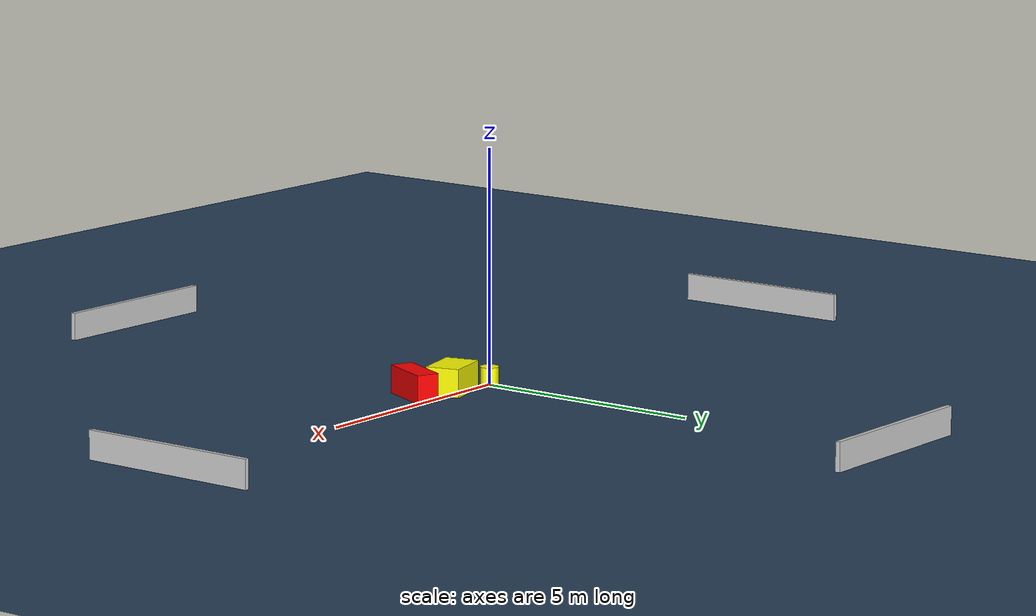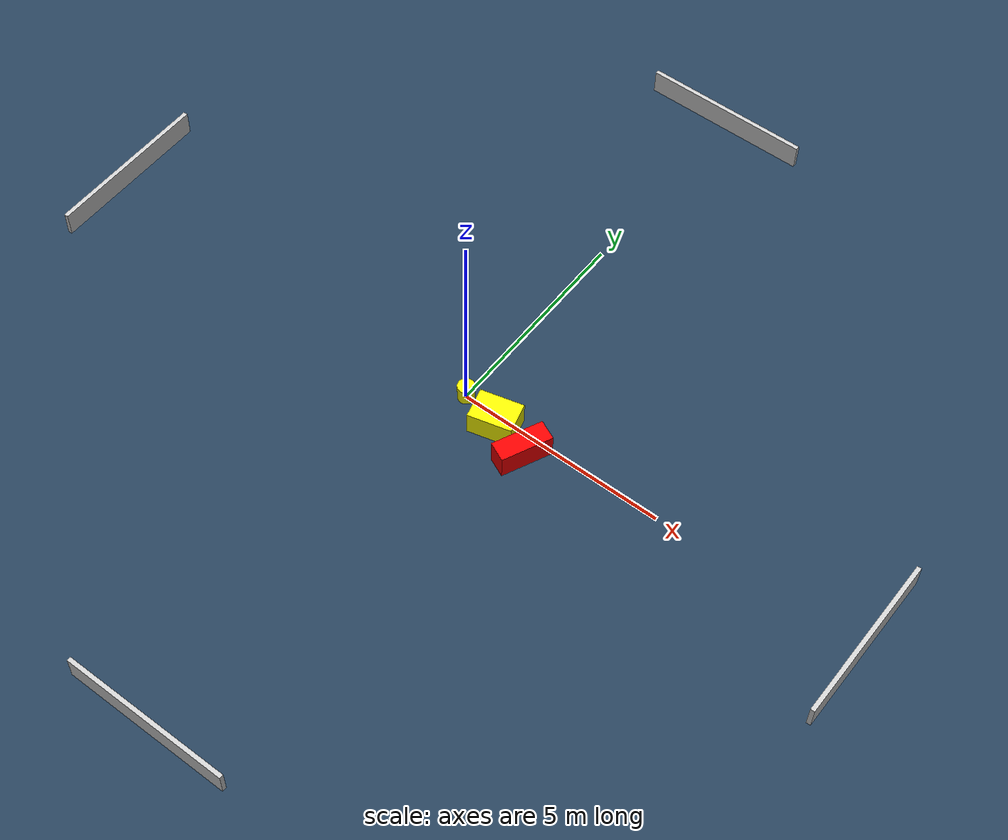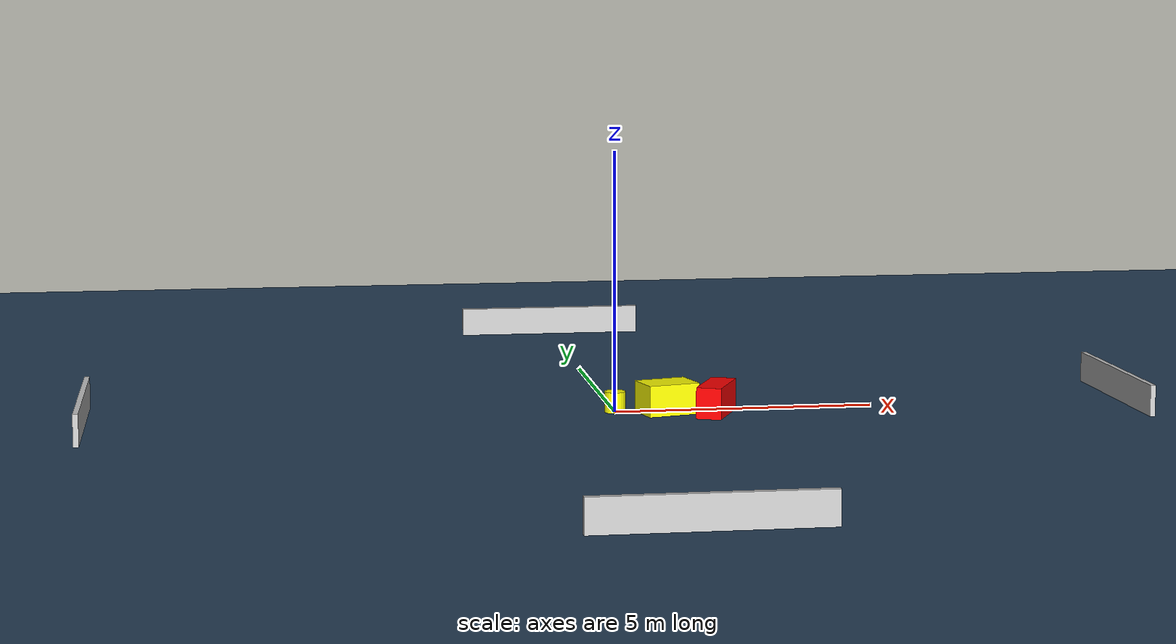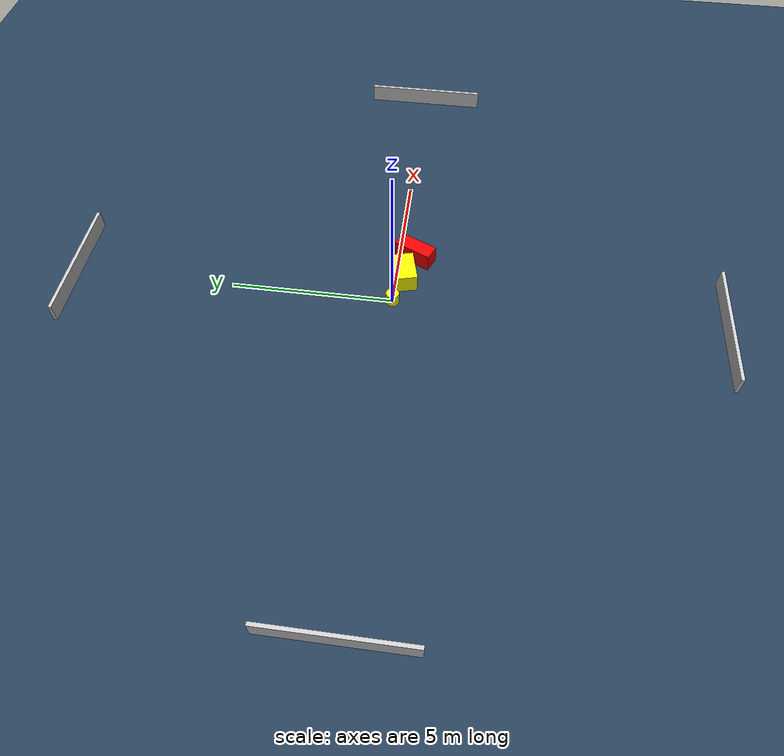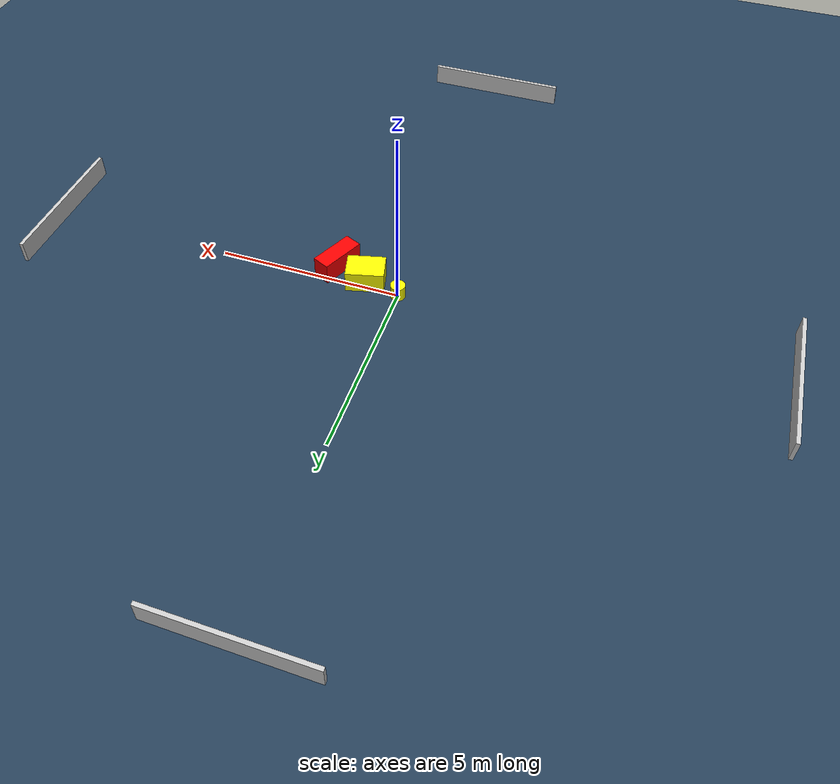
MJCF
<?xml version="1.0" ?>
<mujoco model="generated_environment">
  <option timestep="0.01" integrator="RK4" cone="elliptic"/>
  <default>
    <geom density="1"/>
  </default>
  <asset>
    <texture builtin="gradient" height="3072" name="skybox" rgb1="0.3 0.5 0.7" rgb2="0 0 0" type="skybox" width="512"/>
    <texture builtin="checker" height="300" name="groundplane" rgb1="0.2 0.3 0.4" rgb2="0.1 0.2 0.3" type="2d" width="300"/>
    <material name="groundplane" reflectance="0.2" texrepeat="5 5" texture="groundplane"/>
  </asset>
  <worldbody>
    <light dir="0 0 -1" directional="true" pos="0 0 1.5"/>
    <geom condim="3" friction="0.5 0.005 0.001" material="groundplane" name="floor" pos="0 0 0" size="0 0 0.05" type="plane"/>
    <body name="walls">
      <geom name="wall_1" condim="4" pos="-10.0 0.0 0.3" rgba="0.800000011920929 0.800000011920929 0.800000011920929 1.0" size="0.05 2.0 0.3" type="box"/>
      <geom name="wall_2" condim="4" pos="10.0 0.0 0.3" rgba="0.800000011920929 0.800000011920929 0.800000011920929 1.0" size="0.05 2.0 0.3" type="box"/>
      <geom name="wall_3" condim="4" pos="0.0 -10.0 0.3" rgba="0.800000011920929 0.800000011920929 0.800000011920929 1.0" size="2.0 0.05 0.3" type="box"/>
      <geom name="wall_4" condim="4" pos="0.0 10.0 0.3" rgba="0.800000011920929 0.800000011920929 0.800000011920929 1.0" size="2.0 0.05 0.3" type="box"/>
    </body>
    <body name="robot">
      <joint name="joint_x" type="slide" pos="0 0 0" axis="1 0 0"/>
      <joint name="joint_y" type="slide" pos="0 0 0" axis="0 1 0"/>
      <geom name="robot" type="cylinder" pos="0.0 0.0 0.2" size="0.2 0.2 0.0" mass="5.0" friction="1.0 0.005 0.0001" condim="4" rgba="1.0 1.0 0.0 1.0"/>
    </body>
    <body name="obstacle_1_movable">
      <geom name="obstacle_1_movable" condim="4" pos="0.9686642219026976 -0.22095678694614387 0.3" euler="0 0 14.205251212281471" friction="0.0 0.005 0.001" rgba="1.0 1.0 0.0 1.0" size="0.5110421112223564 0.3640822368708202 0.3" type="box" mass="0.1"/>
      <joint type="free"/>
    </body>
    <body name="obstacle_2_static">
      <geom name="obstacle_2_static" condim="4" pos="1.8775030722246275 -0.49243610696171874 0.3" euler="0 0 245.41831963954763" friction="0.0 0.005 0.001" rgba="1.0 0.0 0.0 1.0" size="0.6111826893812882 0.24044489304604416 0.3" type="box"/>
    </body>
  </worldbody>
  <actuator>
    <motor name="actuator_x" joint="joint_x" gear="1" ctrlrange="-1 1"/>
    <motor name="actuator_y" joint="joint_y" gear="1" ctrlrange="-1 1"/>
  </actuator>
</mujoco>
